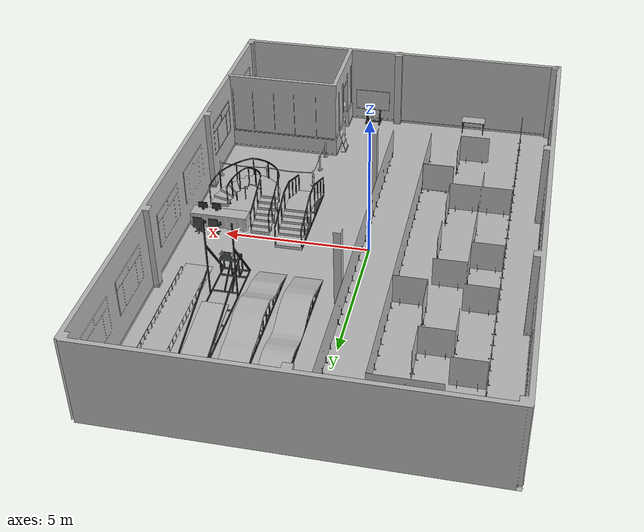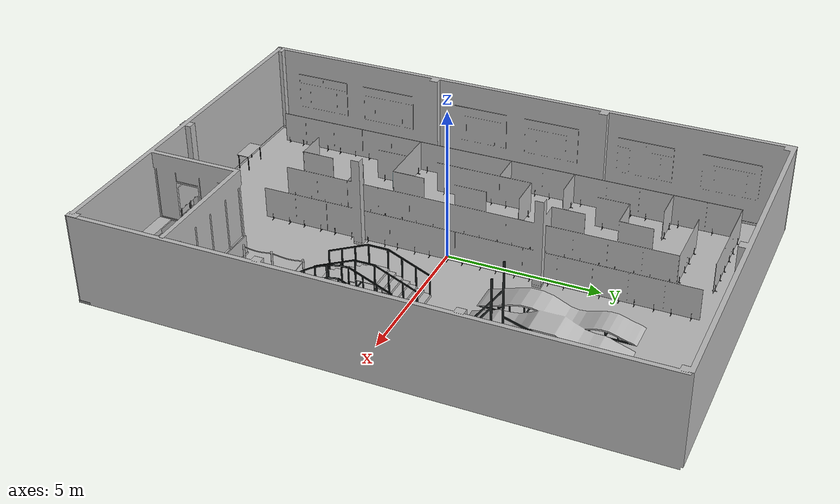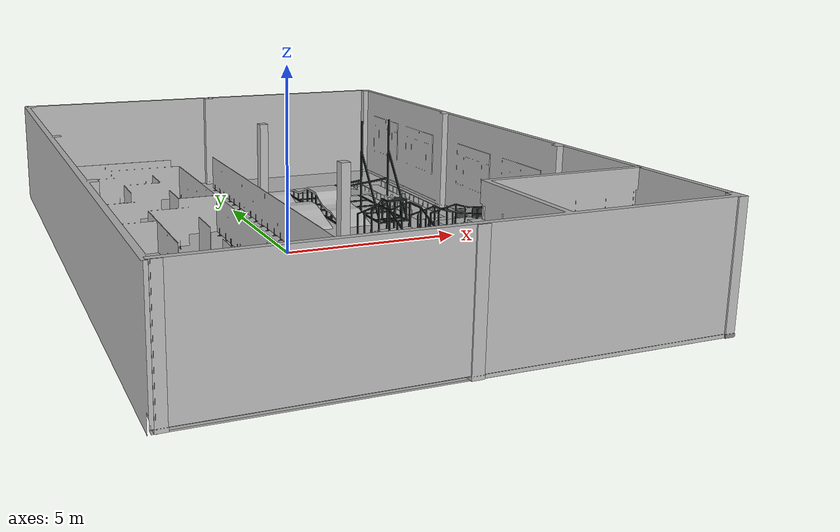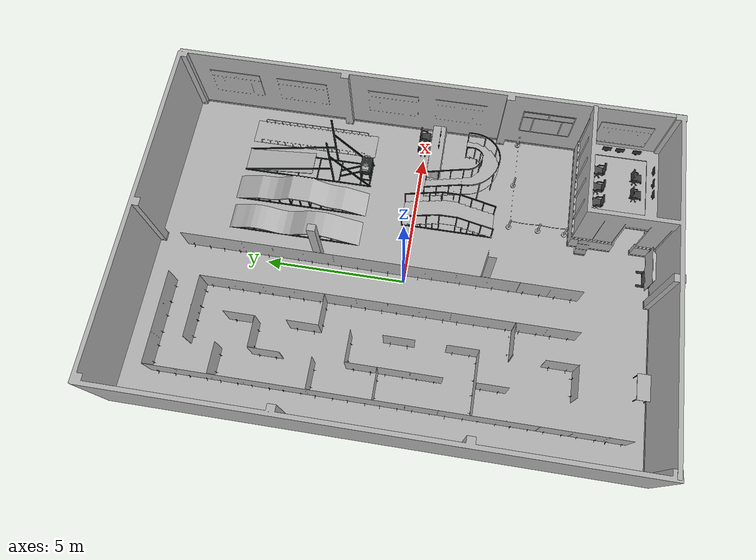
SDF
<?xml version="1.0" ?>
<sdf version="1.4">
  <world name="default">
    <scene>
      <ambient>0.68 0.68 0.68 1.0</ambient>
      <shadows> false</shadows>
      <sky>
        <sunrise/>
        <clouds>
          <speed>12</speed>
      </clouds>
      </sky>
    </scene>

    <physics type='ode'>
      <max_step_size>0.001</max_step_size>
      <real_time_factor>1</real_time_factor>
      <real_time_update_rate>1000</real_time_update_rate>
      <gravity>0 0 -9.8</gravity>
    </physics>

    <light name='sun' type='directional'>
    	<cast_shadows>1</cast_shadows>
    	<pose frame=''>0 0 30 0 -0 0</pose>
    	<diffuse>0.8 0.8 0.8 1</diffuse>
    	<specular>0.1 0.1 0.1 1</specular>
    	<attenuation>
      		<range>1000</range>
      		<constant>0.9</constant>
      		<linear>0.01</linear>
      		<quadratic>0.001</quadratic>
    	</attenuation>
    <direction>-0.5 0.5 -1</direction>
    </light>

    <light name='light1' type='directional'>
    	<pose frame=''>-4.22 -22.6 1 0 0 0</pose>
    	<diffuse>127 127 127 255</diffuse>
    </light>

	<light name='light2' type='directional'>
    	<pose frame=''>2 12.8 2 0 -0 0</pose>
    	<diffuse>127 127 127 255</diffuse>
    </light>

  <light name='light_front' type='directional'>
    	<pose frame=''>-3.18 1.89 2.24 -3.14159 1.57 -3.14159</pose>
    	<diffuse>255 255 255 255</diffuse>
    </light>

    <light name='light_rear' type='directional'>
    	<pose frame=''>3.99 1.29 1 0 -1.57 0</pose>
    	<diffuse>255 255 255 255</diffuse>
    </light>

    <light name='light_left' type='directional'>
    	<pose frame=''>0.6 -25.36 1.97 -1.579 0 0</pose>
    	<diffuse>255 255 255 255</diffuse>
    </light>

    <light name='light_right' type='directional'>
    	<pose frame=''>4 25.54 1 1.579 0 0</pose>
    	<diffuse>255 255 255 255</diffuse>
    </light>

    <include>
      <uri>model://sai_di</uri>
      <pose>0 0 0 0 0 -1.57</pose>
    </include>
  </world>
</sdf>

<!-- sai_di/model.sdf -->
<sdf version="1.4">
  <model name="sai_di1">
    <link name="link1">
      <inertial>
        <mass>15</mass>
        <inertia>
          <ixx>0.0</ixx>
          <ixy>0.0</ixy>
          <ixz>0.0</ixz>
          <iyy>0.0</iyy>
          <iyz>0.0</iyz>
          <izz>0.0</izz>
        </inertia>
      </inertial>
      <collision name="collision1">
        <pose>0 0 0 0 0 0</pose>
        <geometry>
          <mesh>
            <uri>model://sai_di/meshes/sai_di1.dae</uri>
          </mesh>
        </geometry>
      </collision>
      <visual name="visual1">
        <pose>0 0 0 0 0 0</pose>
        <geometry>
          <mesh>
            <uri>model://sai_di/meshes/sai_di1.dae</uri>
          </mesh>
        </geometry>
      </visual>
    </link>

    <link name="link2">
      <inertial>
        <mass>5</mass>
        <inertia>
          <ixx>0.0</ixx>
          <ixy>0.0</ixy>
          <ixz>0.0</ixz>
          <iyy>0.0</iyy>
          <iyz>0.0</iyz>
          <izz>0.0</izz>
        </inertia>
      </inertial>
      <collision name="collision2">
        <pose>0 0 0 0 0 0</pose>
        <geometry>
          <mesh>
            <uri>model://sai_di/meshes/sai_di2.dae</uri>
          </mesh>
        </geometry>
      </collision>
      <visual name="visual2">
        <pose>0 0 0 0 0 0</pose>
        <geometry>
          <mesh>
            <uri>model://sai_di/meshes/sai_di2.dae</uri>
          </mesh>
        </geometry>
      </visual>
    </link>

  <link name="link3">
      <inertial>
        <mass>5</mass>
        <inertia>
          <ixx>0.0</ixx>
          <ixy>0.0</ixy>
          <ixz>0.0</ixz>
          <iyy>0.0</iyy>
          <iyz>0.0</iyz>
          <izz>0.0</izz>
        </inertia>
      </inertial>
      <collision name="collision3">
        <pose>0 0 0 0 0 0</pose>
        <geometry>
          <mesh>
            <uri>model://sai_di/meshes/sai_di3.dae</uri>
          </mesh>
        </geometry>
      </collision>
      <visual name="visual3">
        <pose>0 0 0 0 0 0</pose>
        <geometry>
          <mesh>
            <uri>model://sai_di/meshes/sai_di3.dae</uri>
          </mesh>
        </geometry>
      </visual>
    </link>

    <link name="link4">
      <inertial>
        <mass>5</mass>
        <inertia>
          <ixx>0.0</ixx>
          <ixy>0.0</ixy>
          <ixz>0.0</ixz>
          <iyy>0.0</iyy>
          <iyz>0.0</iyz>
          <izz>0.0</izz>
        </inertia>
      </inertial>
      <collision name="collision4">
        <pose>0 0 0 0 0 0</pose>
        <geometry>
          <mesh>
            <uri>model://sai_di/meshes/sai_di4.dae</uri>
          </mesh>
        </geometry>
      </collision>
      <visual name="visual4">
        <pose>0 0 0 0 0 0</pose>
        <geometry>
          <mesh>
            <uri>model://sai_di/meshes/sai_di4.dae</uri>
          </mesh>
        </geometry>
      </visual>
    </link>

    <static>1</static>
  </model>

</sdf>
